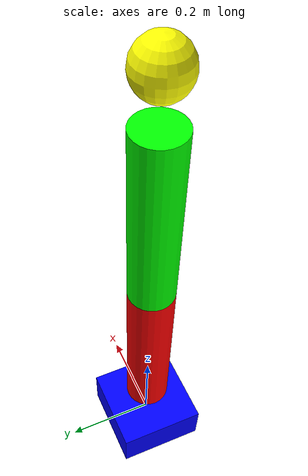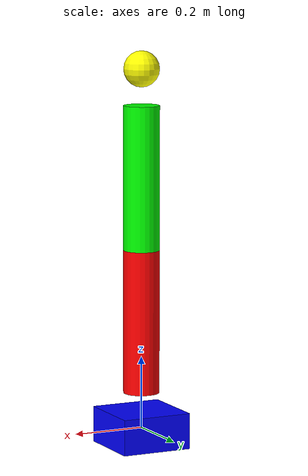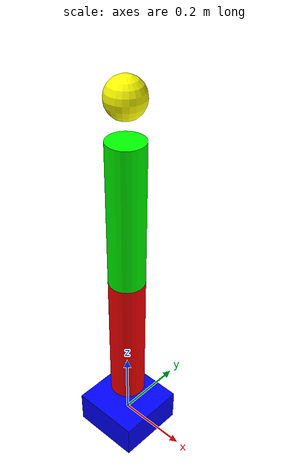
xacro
<?xml version="1.0" encoding="UTF-8"?>
<robot name="robot_arm" xmlns:xacro="http://wwww.ros.org/wiki/xacro">
    <!-- inlcude modular files -->

    <xacro:include filename="$(find robot_arm)/urdf/base.xacro"/>
    <xacro:include filename="$(find robot_arm)/urdf/links_joints.xacro" />
    <xacro:include filename="$(find robot_arm)/urdf/transmission.xacro" />
    <xacro:include filename="$(find robot_arm)/urdf/ign.gazebo.xacro"/>
</robot>

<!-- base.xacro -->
<robot xmlns:xacro="http://www.ros.org/wiki/xacro">

    <link name="dummy_link" />
    <joint name="dummy_joint" type="fixed">
        <parent link="dummy_link" />
        <child link="base_link" />
    </joint>

    <link name="base_link">
        <inertial>
            <origin xyz="0 0 0" rpy="0 0 0" />
            <mass value="1.0" />
            <inertia ixx="0.1" ixy="0.0" ixz="0.0" iyy="0.1" iyz="0.0" izz="0.1" />
        </inertial>
        <visual>
            <origin xyz="0 0 0" rpy="0 0 0" />
            <geometry>
                <box size="0.2 0.2 0.1" />
            </geometry>
            <material name="blue">
                <color rgba="0 0 1 1" />
            </material>
        </visual>
        <collision>
            <origin xyz="0 0 0" rpy="0 0 0" />
            <geometry>
                <box size="0.2 0.2 0.1" />
            </geometry>
        </collision>
    </link>

</robot>

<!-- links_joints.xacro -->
<robot xmlns:xacro="http://www.ros.org/wiki/xacro">

    <!-- Link 1 -->
    <link name="link_1">
        <inertial>
            <origin xyz="0 0 0.2" rpy="0 0 0" />
            <mass value="0.5" />
            <inertia ixx="0.05" ixy="0.0" ixz="0.0" iyy="0.05" iyz="0.0" izz="0.05" />
        </inertial>
        <visual>
            <origin xyz="0 0 0.2" rpy="0 0 0" />
            <geometry>
                <cylinder length="0.4" radius="0.05" />
            </geometry>
            <material name="red">
                <color rgba="1 0 0 1" />
            </material>
        </visual>
        <collision>
            <origin xyz="0 0 0.2" rpy="0 0 0" />
            <geometry>
                <cylinder length="0.4" radius="0.05" />
            </geometry>
        </collision>
    </link>

    <!-- Joint 1 -->
    <joint name="joint_1" type="revolute">
        <parent link="base_link" />
        <child link="link_1" />
        <origin xyz="0 0 0.1" rpy="0 0 0" />
        <axis xyz="0 0 1" />
        <dynamics damping="0.5" friction="0.1" />
        <limit lower="-1.57" upper="1.57" effort="10" velocity="1" />
    </joint>

    <!-- Link 2 -->
    <link name="link_2">
        <inertial>
            <origin xyz="0 0 0.2" rpy="0 0 0" />
            <mass value="0.5" />
            <inertia ixx="0.05" ixy="0.0" ixz="0.0" iyy="0.05" iyz="0.0" izz="0.05" />
        </inertial>
        <visual>
            <origin xyz="0 0 0.2" rpy="0 0 0" />
            <geometry>
                <cylinder length="0.4" radius="0.05" />
            </geometry>
            <material name="green">
                <color rgba="0 1 0 1" />
            </material>
        </visual>
        <collision>
            <origin xyz="0 0 0.2" rpy="0 0 0" />
            <geometry>
                <cylinder length="0.4" radius="0.05" />
            </geometry>
        </collision>
    </link>

    <!-- Joint 2 -->
    <joint name="joint_2" type="revolute">
        <parent link="link_1" />
        <child link="link_2" />
        <origin xyz="0 0 0.4" rpy="0 0 0" />
        <axis xyz="0 1 0" />
        <limit lower="-1.57" upper="1.57" effort="10" velocity="1" />
    </joint>

    <!-- End Effector -->
    <link name="link_3">
        <inertial>
            <origin xyz="0 0 0.1" rpy="0 0 0" />
            <mass value="0.3" />
            <inertia ixx="0.03" ixy="0.0" ixz="0.0" iyy="0.03" iyz="0.0" izz="0.03" />
        </inertial>
        <visual>
            <origin xyz="0 0 0.1" rpy="0 0 0" />
            <geometry>
                <sphere radius="0.05" />
            </geometry>
            <material name="yellow">
                <color rgba="1 1 0 1" />
            </material>
        </visual>
        <collision>
            <origin xyz="0 0 0.1" rpy="0 0 0" />
            <geometry>
                <sphere radius="0.05" />
            </geometry>
        </collision>
    </link>

    <!-- Joint 3 -->
    <joint name="joint_3" type="revolute">
        <parent link="link_2" />
        <child link="link_3" />
        <origin xyz="0 0 0.4" rpy="0 0 0" />
        <axis xyz="1 0 0" />
        <limit lower="-1.57" upper="1.57" effort="10" velocity="1" />
    </joint>

</robot>
